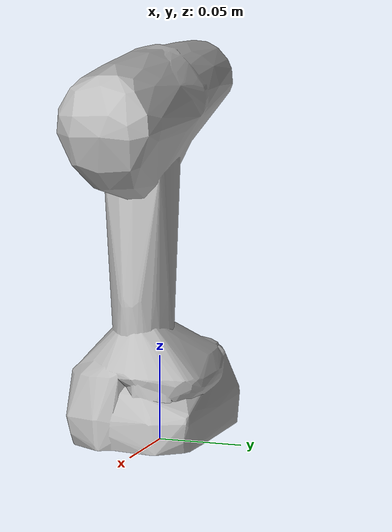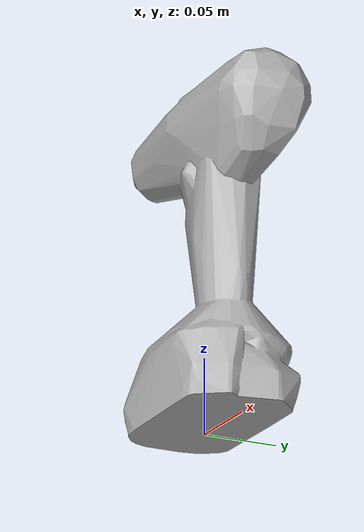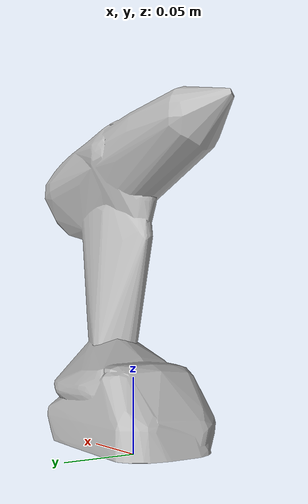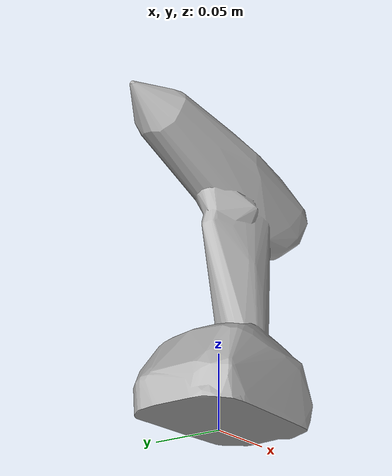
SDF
<?xml version="1.0" ?>
<sdf version="1.4">
  <model name="driller_point_metal">
    <!-- Initial pose a bit higher than min bounding box z -->
    <pose>0 0 0.1185  0 0 0</pose>
    <static>false</static>
    <link name="body">
      <inertial>
        <pose>0.016244 -0.000171 0.001062  0 0 0</pose>
        <!-- POSE IS CENTER OF MASS -->
        <mass>1.5</mass>
        <inertia>
          <!-- GET THIS VALUE WITH MESHLAB - COMPUTE GEOMETRIC FEATURES ON x10 scaled mesh -->
          <ixx> 6.27393e-3</ixx>
          <ixy>-0.00000e-3</ixy>
          <ixz>-0.30594e-3</ixz>
          <iyy> 7.35856e-3</iyy>
          <iyz>-0.00000e-3</iyz>
          <izz> 1.56268e-3</izz>
        </inertia>
      </inertial>
      <visual name="visual">
        <cast_shadows>true</cast_shadows>
        <geometry>
         <mesh>
           <uri>package://costar_objects/sdf/driller_point_metal/meshes/driller_point_metal.obj</uri>
         </mesh>
        </geometry>
      </visual>
      <collision name="collision">
        <surface>
          <friction>
            <ode>
              <mu>0.3</mu>
              <mu2>0.3</mu2>
            </ode>
          </friction>
        </surface>
        <geometry>
         <mesh>
           <uri>package://costar_objects/sdf/driller_point_metal/meshes/driller_point_metal_simplified.stl</uri>
         </mesh>
        </geometry>
      </collision>
    </link>
  </model>
</sdf>
